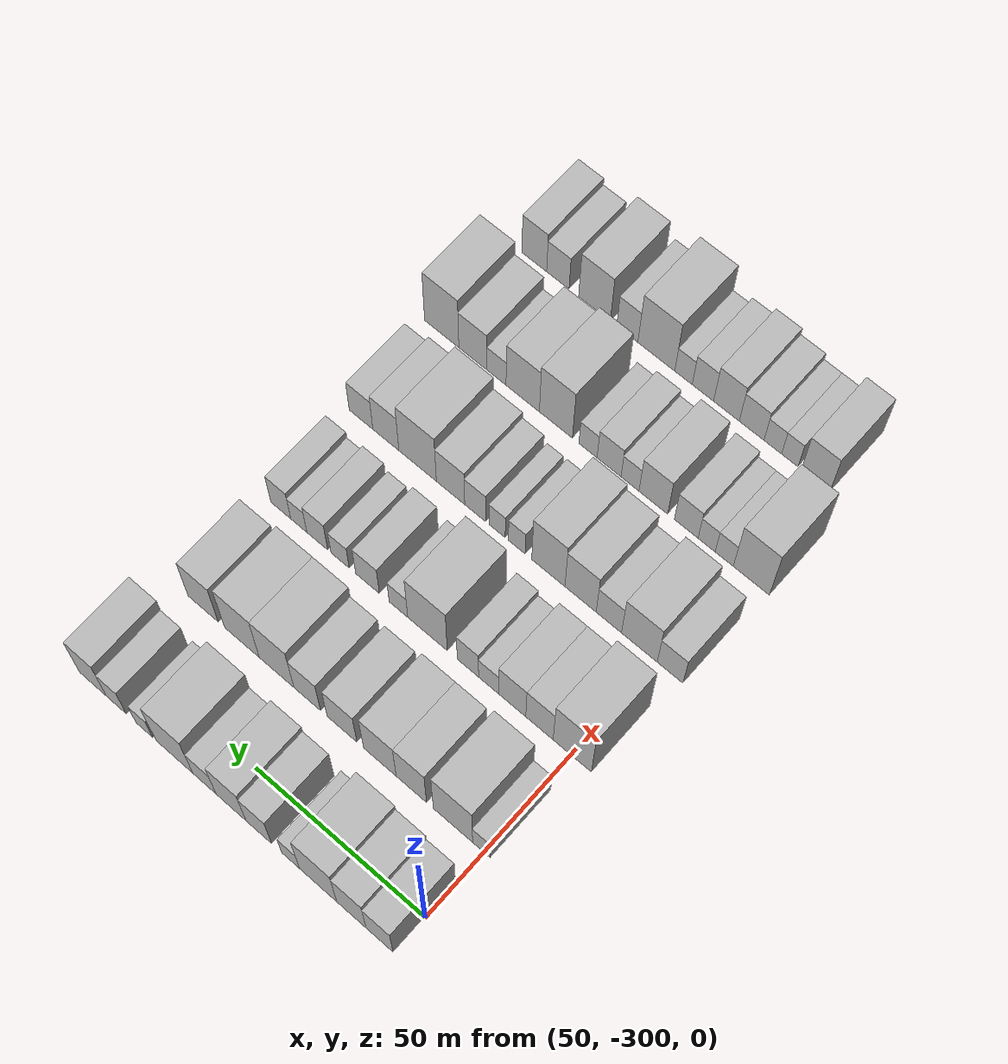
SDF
<sdf version="1.6">
 <world name="default">
  <model name="building_24">
   <static>1</static>
   <pose>50.0000 -295.7935 0 0.000000 0.000000 0.000000</pose>
   <link name="link">
    <pose>0 0 9.00 0 0 0</pose>
    <collision name="collision"><geometry><box><size>20.0000 7.7783 18.0000</size></box></geometry></collision>
    <visual name="visual">
     <cast_shadows>0</cast_shadows>
     <geometry><box><size>20.0000 7.7783 18.0000</size></box></geometry>
     <material>
      <script>
       <uri>model://HANNAS_wall/materials/scripts</uri>
       <uri>model://HANNAS_wall/materials/textures</uri>
       <name>vrc/HANNAS_wall</name>
      </script>
     </material>
    </visual>
   </link>
  </model>
  <model name="building_25">
   <static>1</static>
   <pose>50.0000 -287.6442 0 0.000000 0.000000 0.000000</pose>
   <link name="link">
    <pose>0 0 10.50 0 0 0</pose>
    <collision name="collision"><geometry><box><size>20.0000 8.5202 21.0000</size></box></geometry></collision>
    <visual name="visual">
     <cast_shadows>0</cast_shadows>
     <geometry><box><size>20.0000 8.5202 21.0000</size></box></geometry>
     <material>
      <script>
       <uri>model://HANNAS_wall/materials/scripts</uri>
       <uri>model://HANNAS_wall/materials/textures</uri>
       <name>vrc/HANNAS_wall</name>
      </script>
     </material>
    </visual>
   </link>
  </model>
  <model name="building_26">
   <static>1</static>
   <pose>50.0000 -277.9090 0 0.000000 0.000000 0.000000</pose>
   <link name="link">
    <pose>0 0 12.00 0 0 0</pose>
    <collision name="collision"><geometry><box><size>20.0000 10.9503 24.0000</size></box></geometry></collision>
    <visual name="visual">
     <cast_shadows>0</cast_shadows>
     <geometry><box><size>20.0000 10.9503 24.0000</size></box></geometry>
     <material>
      <script>
       <uri>model://HANNAS_wall/materials/scripts</uri>
       <uri>model://HANNAS_wall/materials/textures</uri>
       <name>vrc/HANNAS_wall</name>
      </script>
     </material>
    </visual>
   </link>
  </model>
  <model name="building_27">
   <static>1</static>
   <pose>50.0000 -269.7770 0 0.000000 0.000000 0.000000</pose>
   <link name="link">
    <pose>0 0 6.00 0 0 0</pose>
    <collision name="collision"><geometry><box><size>20.0000 5.3138 12.0000</size></box></geometry></collision>
    <visual name="visual">
     <cast_shadows>0</cast_shadows>
     <geometry><box><size>20.0000 5.3138 12.0000</size></box></geometry>
     <material>
      <script>
       <uri>model://HANNAS_wall/materials/scripts</uri>
       <uri>model://HANNAS_wall/materials/textures</uri>
       <name>vrc/HANNAS_wall</name>
      </script>
     </material>
    </visual>
   </link>
  </model>
  <model name="building_28">
   <static>1</static>
   <pose>50.0000 -260.3214 0 0.000000 0.000000 0.000000</pose>
   <link name="link">
    <pose>0 0 9.00 0 0 0</pose>
    <collision name="collision"><geometry><box><size>20.0000 7.5975 18.0000</size></box></geometry></collision>
    <visual name="visual">
     <cast_shadows>0</cast_shadows>
     <geometry><box><size>20.0000 7.5975 18.0000</size></box></geometry>
     <material>
      <script>
       <uri>model://HANNAS_wall/materials/scripts</uri>
       <uri>model://HANNAS_wall/materials/textures</uri>
       <name>vrc/HANNAS_wall</name>
      </script>
     </material>
    </visual>
   </link>
  </model>
  <model name="building_29">
   <static>1</static>
   <pose>50.0000 -251.9993 0 0.000000 0.000000 0.000000</pose>
   <link name="link">
    <pose>0 0 10.50 0 0 0</pose>
    <collision name="collision"><geometry><box><size>20.0000 9.0466 21.0000</size></box></geometry></collision>
    <visual name="visual">
     <cast_shadows>0</cast_shadows>
     <geometry><box><size>20.0000 9.0466 21.0000</size></box></geometry>
     <material>
      <script>
       <uri>model://HANNAS_wall/materials/scripts</uri>
       <uri>model://HANNAS_wall/materials/textures</uri>
       <name>vrc/HANNAS_wall</name>
      </script>
     </material>
    </visual>
   </link>
  </model>
  <model name="building_30">
   <static>1</static>
   <pose>50.0000 -243.9569 0 0.000000 0.000000 0.000000</pose>
   <link name="link">
    <pose>0 0 7.50 0 0 0</pose>
    <collision name="collision"><geometry><box><size>20.0000 7.0382 15.0000</size></box></geometry></collision>
    <visual name="visual">
     <cast_shadows>0</cast_shadows>
     <geometry><box><size>20.0000 7.0382 15.0000</size></box></geometry>
     <material>
      <script>
       <uri>model://HANNAS_wall/materials/scripts</uri>
       <uri>model://HANNAS_wall/materials/textures</uri>
       <name>vrc/HANNAS_wall</name>
      </script>
     </material>
    </visual>
   </link>
  </model>
  <model name="building_31">
   <static>1</static>
   <pose>50.0000 -234.7610 0 0.000000 0.000000 0.000000</pose>
   <link name="link">
    <pose>0 0 12.00 0 0 0</pose>
    <collision name="collision"><geometry><box><size>20.0000 11.3537 24.0000</size></box></geometry></collision>
    <visual name="visual">
     <cast_shadows>0</cast_shadows>
     <geometry><box><size>20.0000 11.3537 24.0000</size></box></geometry>
     <material>
      <script>
       <uri>model://HANNAS_wall/materials/scripts</uri>
       <uri>model://HANNAS_wall/materials/textures</uri>
       <name>vrc/HANNAS_wall</name>
      </script>
     </material>
    </visual>
   </link>
  </model>
  <model name="building_32">
   <static>1</static>
   <pose>50.0000 -225.4510 0 0.000000 0.000000 0.000000</pose>
   <link name="link">
    <pose>0 0 6.00 0 0 0</pose>
    <collision name="collision"><geometry><box><size>20.0000 5.2663 12.0000</size></box></geometry></collision>
    <visual name="visual">
     <cast_shadows>0</cast_shadows>
     <geometry><box><size>20.0000 5.2663 12.0000</size></box></geometry>
     <material>
      <script>
       <uri>model://HANNAS_wall/materials/scripts</uri>
       <uri>model://HANNAS_wall/materials/textures</uri>
       <name>vrc/HANNAS_wall</name>
      </script>
     </material>
    </visual>
   </link>
  </model>
  <model name="building_33">
   <static>1</static>
   <pose>50.0000 -216.7390 0 0.000000 0.000000 0.000000</pose>
   <link name="link">
    <pose>0 0 7.50 0 0 0</pose>
    <collision name="collision"><geometry><box><size>20.0000 6.1576 15.0000</size></box></geometry></collision>
    <visual name="visual">
     <cast_shadows>0</cast_shadows>
     <geometry><box><size>20.0000 6.1576 15.0000</size></box></geometry>
     <material>
      <script>
       <uri>model://HANNAS_wall/materials/scripts</uri>
       <uri>model://HANNAS_wall/materials/textures</uri>
       <name>vrc/HANNAS_wall</name>
      </script>
     </material>
    </visual>
   </link>
  </model>
  <model name="building_34">
   <static>1</static>
   <pose>50.0000 -209.4350 0 0.000000 0.000000 0.000000</pose>
   <link name="link">
    <pose>0 0 10.50 0 0 0</pose>
    <collision name="collision"><geometry><box><size>20.0000 8.4504 21.0000</size></box></geometry></collision>
    <visual name="visual">
     <cast_shadows>0</cast_shadows>
     <geometry><box><size>20.0000 8.4504 21.0000</size></box></geometry>
     <material>
      <script>
       <uri>model://HANNAS_wall/materials/scripts</uri>
       <uri>model://HANNAS_wall/materials/textures</uri>
       <name>vrc/HANNAS_wall</name>
      </script>
     </material>
    </visual>
   </link>
  </model>
  <model name="building_144">
   <static>1</static>
   <pose>79.0000 -299.1763 0 0.000000 0.000000 0.000000</pose>
   <link name="link">
    <pose>0 0 6.00 0 0 0</pose>
    <collision name="collision"><geometry><box><size>20.0000 5.1078 12.0000</size></box></geometry></collision>
    <visual name="visual">
     <cast_shadows>0</cast_shadows>
     <geometry><box><size>20.0000 5.1078 12.0000</size></box></geometry>
     <material>
      <script>
       <uri>model://HANNAS_wall/materials/scripts</uri>
       <uri>model://HANNAS_wall/materials/textures</uri>
       <name>vrc/HANNAS_wall</name>
      </script>
     </material>
    </visual>
   </link>
  </model>
  <model name="building_145">
   <static>1</static>
   <pose>79.0000 -290.9126 0 0.000000 0.000000 0.000000</pose>
   <link name="link">
    <pose>0 0 12.00 0 0 0</pose>
    <collision name="collision"><geometry><box><size>20.0000 11.4195 24.0000</size></box></geometry></collision>
    <visual name="visual">
     <cast_shadows>0</cast_shadows>
     <geometry><box><size>20.0000 11.4195 24.0000</size></box></geometry>
     <material>
      <script>
       <uri>model://HANNAS_wall/materials/scripts</uri>
       <uri>model://HANNAS_wall/materials/textures</uri>
       <name>vrc/HANNAS_wall</name>
      </script>
     </material>
    </visual>
   </link>
  </model>
  <model name="building_146">
   <static>1</static>
   <pose>79.0000 -278.7299 0 0.000000 0.000000 0.000000</pose>
   <link name="link">
    <pose>0 0 10.50 0 0 0</pose>
    <collision name="collision"><geometry><box><size>20.0000 8.9459 21.0000</size></box></geometry></collision>
    <visual name="visual">
     <cast_shadows>0</cast_shadows>
     <geometry><box><size>20.0000 8.9459 21.0000</size></box></geometry>
     <material>
      <script>
       <uri>model://HANNAS_wall/materials/scripts</uri>
       <uri>model://HANNAS_wall/materials/textures</uri>
       <name>vrc/HANNAS_wall</name>
      </script>
     </material>
    </visual>
   </link>
  </model>
  <model name="building_147">
   <static>1</static>
   <pose>79.0000 -269.4098 0 0.000000 0.000000 0.000000</pose>
   <link name="link">
    <pose>0 0 10.50 0 0 0</pose>
    <collision name="collision"><geometry><box><size>20.0000 9.6942 21.0000</size></box></geometry></collision>
    <visual name="visual">
     <cast_shadows>0</cast_shadows>
     <geometry><box><size>20.0000 9.6942 21.0000</size></box></geometry>
     <material>
      <script>
       <uri>model://HANNAS_wall/materials/scripts</uri>
       <uri>model://HANNAS_wall/materials/textures</uri>
       <name>vrc/HANNAS_wall</name>
      </script>
     </material>
    </visual>
   </link>
  </model>
  <model name="building_148">
   <static>1</static>
   <pose>79.0000 -258.0982 0 0.000000 0.000000 0.000000</pose>
   <link name="link">
    <pose>0 0 9.00 0 0 0</pose>
    <collision name="collision"><geometry><box><size>20.0000 8.9291 18.0000</size></box></geometry></collision>
    <visual name="visual">
     <cast_shadows>0</cast_shadows>
     <geometry><box><size>20.0000 8.9291 18.0000</size></box></geometry>
     <material>
      <script>
       <uri>model://HANNAS_wall/materials/scripts</uri>
       <uri>model://HANNAS_wall/materials/textures</uri>
       <name>vrc/HANNAS_wall</name>
      </script>
     </material>
    </visual>
   </link>
  </model>
  <model name="building_149">
   <static>1</static>
   <pose>79.0000 -247.5800 0 0.000000 0.000000 0.000000</pose>
   <link name="link">
    <pose>0 0 9.00 0 0 0</pose>
    <collision name="collision"><geometry><box><size>20.0000 8.1072 18.0000</size></box></geometry></collision>
    <visual name="visual">
     <cast_shadows>0</cast_shadows>
     <geometry><box><size>20.0000 8.1072 18.0000</size></box></geometry>
     <material>
      <script>
       <uri>model://HANNAS_wall/materials/scripts</uri>
       <uri>model://HANNAS_wall/materials/textures</uri>
       <name>vrc/HANNAS_wall</name>
      </script>
     </material>
    </visual>
   </link>
  </model>
  <model name="building_150">
   <static>1</static>
   <pose>79.0000 -238.2174 0 0.000000 0.000000 0.000000</pose>
   <link name="link">
    <pose>0 0 12.00 0 0 0</pose>
    <collision name="collision"><geometry><box><size>20.0000 10.6180 24.0000</size></box></geometry></collision>
    <visual name="visual">
     <cast_shadows>0</cast_shadows>
     <geometry><box><size>20.0000 10.6180 24.0000</size></box></geometry>
     <material>
      <script>
       <uri>model://HANNAS_wall/materials/scripts</uri>
       <uri>model://HANNAS_wall/materials/textures</uri>
       <name>vrc/HANNAS_wall</name>
      </script>
     </material>
    </visual>
   </link>
  </model>
  <model name="building_151">
   <static>1</static>
   <pose>79.0000 -227.5384 0 0.000000 0.000000 0.000000</pose>
   <link name="link">
    <pose>0 0 12.00 0 0 0</pose>
    <collision name="collision"><geometry><box><size>20.0000 10.7400 24.0000</size></box></geometry></collision>
    <visual name="visual">
     <cast_shadows>0</cast_shadows>
     <geometry><box><size>20.0000 10.7400 24.0000</size></box></geometry>
     <material>
      <script>
       <uri>model://HANNAS_wall/materials/scripts</uri>
       <uri>model://HANNAS_wall/materials/textures</uri>
       <name>vrc/HANNAS_wall</name>
      </script>
     </material>
    </visual>
   </link>
  </model>
  <model name="building_152">
   <static>1</static>
   <pose>79.0000 -215.4387 0 0.000000 0.000000 0.000000</pose>
   <link name="link">
    <pose>0 0 10.50 0 0 0</pose>
    <collision name="collision"><geometry><box><size>20.0000 9.4594 21.0000</size></box></geometry></collision>
    <visual name="visual">
     <cast_shadows>0</cast_shadows>
     <geometry><box><size>20.0000 9.4594 21.0000</size></box></geometry>
     <material>
      <script>
       <uri>model://HANNAS_wall/materials/scripts</uri>
       <uri>model://HANNAS_wall/materials/textures</uri>
       <name>vrc/HANNAS_wall</name>
      </script>
     </material>
    </visual>
   </link>
  </model>
  <model name="building_257">
   <static>1</static>
   <pose>108.0000 -300.2054 0 0.000000 0.000000 0.000000</pose>
   <link name="link">
    <pose>0 0 12.00 0 0 0</pose>
    <collision name="collision"><geometry><box><size>20.0000 11.0949 24.0000</size></box></geometry></collision>
    <visual name="visual">
     <cast_shadows>0</cast_shadows>
     <geometry><box><size>20.0000 11.0949 24.0000</size></box></geometry>
     <material>
      <script>
       <uri>model://HANNAS_wall/materials/scripts</uri>
       <uri>model://HANNAS_wall/materials/textures</uri>
       <name>vrc/HANNAS_wall</name>
      </script>
     </material>
    </visual>
   </link>
  </model>
  <model name="building_258">
   <static>1</static>
   <pose>108.0000 -290.6607 0 0.000000 0.000000 0.000000</pose>
   <link name="link">
    <pose>0 0 9.00 0 0 0</pose>
    <collision name="collision"><geometry><box><size>20.0000 7.9945 18.0000</size></box></geometry></collision>
    <visual name="visual">
     <cast_shadows>0</cast_shadows>
     <geometry><box><size>20.0000 7.9945 18.0000</size></box></geometry>
     <material>
      <script>
       <uri>model://HANNAS_wall/materials/scripts</uri>
       <uri>model://HANNAS_wall/materials/textures</uri>
       <name>vrc/HANNAS_wall</name>
      </script>
     </material>
    </visual>
   </link>
  </model>
  <model name="building_259">
   <static>1</static>
   <pose>108.0000 -282.6264 0 0.000000 0.000000 0.000000</pose>
   <link name="link">
    <pose>0 0 9.00 0 0 0</pose>
    <collision name="collision"><geometry><box><size>20.0000 8.0741 18.0000</size></box></geometry></collision>
    <visual name="visual">
     <cast_shadows>0</cast_shadows>
     <geometry><box><size>20.0000 8.0741 18.0000</size></box></geometry>
     <material>
      <script>
       <uri>model://HANNAS_wall/materials/scripts</uri>
       <uri>model://HANNAS_wall/materials/textures</uri>
       <name>vrc/HANNAS_wall</name>
      </script>
     </material>
    </visual>
   </link>
  </model>
  <model name="building_260">
   <static>1</static>
   <pose>108.0000 -275.6548 0 0.000000 0.000000 0.000000</pose>
   <link name="link">
    <pose>0 0 6.00 0 0 0</pose>
    <collision name="collision"><geometry><box><size>20.0000 5.8690 12.0000</size></box></geometry></collision>
    <visual name="visual">
     <cast_shadows>0</cast_shadows>
     <geometry><box><size>20.0000 5.8690 12.0000</size></box></geometry>
     <material>
      <script>
       <uri>model://HANNAS_wall/materials/scripts</uri>
       <uri>model://HANNAS_wall/materials/textures</uri>
       <name>vrc/HANNAS_wall</name>
      </script>
     </material>
    </visual>
   </link>
  </model>
  <model name="building_261">
   <static>1</static>
   <pose>108.0000 -269.5422 0 0.000000 0.000000 0.000000</pose>
   <link name="link">
    <pose>0 0 7.50 0 0 0</pose>
    <collision name="collision"><geometry><box><size>20.0000 6.3562 15.0000</size></box></geometry></collision>
    <visual name="visual">
     <cast_shadows>0</cast_shadows>
     <geometry><box><size>20.0000 6.3562 15.0000</size></box></geometry>
     <material>
      <script>
       <uri>model://HANNAS_wall/materials/scripts</uri>
       <uri>model://HANNAS_wall/materials/textures</uri>
       <name>vrc/HANNAS_wall</name>
      </script>
     </material>
    </visual>
   </link>
  </model>
  <model name="building_262">
   <static>1</static>
   <pose>108.0000 -257.4050 0 0.000000 0.000000 0.000000</pose>
   <link name="link">
    <pose>0 0 12.00 0 0 0</pose>
    <collision name="collision"><geometry><box><size>20.0000 11.9183 24.0000</size></box></geometry></collision>
    <visual name="visual">
     <cast_shadows>0</cast_shadows>
     <geometry><box><size>20.0000 11.9183 24.0000</size></box></geometry>
     <material>
      <script>
       <uri>model://HANNAS_wall/materials/scripts</uri>
       <uri>model://HANNAS_wall/materials/textures</uri>
       <name>vrc/HANNAS_wall</name>
      </script>
     </material>
    </visual>
   </link>
  </model>
  <model name="building_263">
   <static>1</static>
   <pose>108.0000 -248.6126 0 0.000000 0.000000 0.000000</pose>
   <link name="link">
    <pose>0 0 6.00 0 0 0</pose>
    <collision name="collision"><geometry><box><size>20.0000 5.6665 12.0000</size></box></geometry></collision>
    <visual name="visual">
     <cast_shadows>0</cast_shadows>
     <geometry><box><size>20.0000 5.6665 12.0000</size></box></geometry>
     <material>
      <script>
       <uri>model://HANNAS_wall/materials/scripts</uri>
       <uri>model://HANNAS_wall/materials/textures</uri>
       <name>vrc/HANNAS_wall</name>
      </script>
     </material>
    </visual>
   </link>
  </model>
  <model name="building_264">
   <static>1</static>
   <pose>108.0000 -239.1453 0 0.000000 0.000000 0.000000</pose>
   <link name="link">
    <pose>0 0 7.50 0 0 0</pose>
    <collision name="collision"><geometry><box><size>20.0000 7.2682 15.0000</size></box></geometry></collision>
    <visual name="visual">
     <cast_shadows>0</cast_shadows>
     <geometry><box><size>20.0000 7.2682 15.0000</size></box></geometry>
     <material>
      <script>
       <uri>model://HANNAS_wall/materials/scripts</uri>
       <uri>model://HANNAS_wall/materials/textures</uri>
       <name>vrc/HANNAS_wall</name>
      </script>
     </material>
    </visual>
   </link>
  </model>
  <model name="building_265">
   <static>1</static>
   <pose>108.0000 -230.6921 0 0.000000 0.000000 0.000000</pose>
   <link name="link">
    <pose>0 0 6.00 0 0 0</pose>
    <collision name="collision"><geometry><box><size>20.0000 5.6381 12.0000</size></box></geometry></collision>
    <visual name="visual">
     <cast_shadows>0</cast_shadows>
     <geometry><box><size>20.0000 5.6381 12.0000</size></box></geometry>
     <material>
      <script>
       <uri>model://HANNAS_wall/materials/scripts</uri>
       <uri>model://HANNAS_wall/materials/textures</uri>
       <name>vrc/HANNAS_wall</name>
      </script>
     </material>
    </visual>
   </link>
  </model>
  <model name="building_266">
   <static>1</static>
   <pose>108.0000 -223.6179 0 0.000000 0.000000 0.000000</pose>
   <link name="link">
    <pose>0 0 7.50 0 0 0</pose>
    <collision name="collision"><geometry><box><size>20.0000 6.5104 15.0000</size></box></geometry></collision>
    <visual name="visual">
     <cast_shadows>0</cast_shadows>
     <geometry><box><size>20.0000 6.5104 15.0000</size></box></geometry>
     <material>
      <script>
       <uri>model://HANNAS_wall/materials/scripts</uri>
       <uri>model://HANNAS_wall/materials/textures</uri>
       <name>vrc/HANNAS_wall</name>
      </script>
     </material>
    </visual>
   </link>
  </model>
  <model name="building_267">
   <static>1</static>
   <pose>108.0000 -217.8366 0 0.000000 0.000000 0.000000</pose>
   <link name="link">
    <pose>0 0 6.00 0 0 0</pose>
    <collision name="collision"><geometry><box><size>20.0000 5.0522 12.0000</size></box></geometry></collision>
    <visual name="visual">
     <cast_shadows>0</cast_shadows>
     <geometry><box><size>20.0000 5.0522 12.0000</size></box></geometry>
     <material>
      <script>
       <uri>model://HANNAS_wall/materials/scripts</uri>
       <uri>model://HANNAS_wall/materials/textures</uri>
       <name>vrc/HANNAS_wall</name>
      </script>
     </material>
    </visual>
   </link>
  </model>
  <model name="building_268">
   <static>1</static>
   <pose>108.0000 -212.1543 0 0.000000 0.000000 0.000000</pose>
   <link name="link">
    <pose>0 0 7.50 0 0 0</pose>
    <collision name="collision"><geometry><box><size>20.0000 6.3123 15.0000</size></box></geometry></collision>
    <visual name="visual">
     <cast_shadows>0</cast_shadows>
     <geometry><box><size>20.0000 6.3123 15.0000</size></box></geometry>
     <material>
      <script>
       <uri>model://HANNAS_wall/materials/scripts</uri>
       <uri>model://HANNAS_wall/materials/textures</uri>
       <name>vrc/HANNAS_wall</name>
      </script>
     </material>
    </visual>
   </link>
  </model>
  <model name="building_373">
   <static>1</static>
   <pose>137.0000 -304.1164 0 0.000000 0.000000 0.000000</pose>
   <link name="link">
    <pose>0 0 7.50 0 0 0</pose>
    <collision name="collision"><geometry><box><size>20.0000 7.4703 15.0000</size></box></geometry></collision>
    <visual name="visual">
     <cast_shadows>0</cast_shadows>
     <geometry><box><size>20.0000 7.4703 15.0000</size></box></geometry>
     <material>
      <script>
       <uri>model://HANNAS_wall/materials/scripts</uri>
       <uri>model://HANNAS_wall/materials/textures</uri>
       <name>vrc/HANNAS_wall</name>
      </script>
     </material>
    </visual>
   </link>
  </model>
  <model name="building_374">
   <static>1</static>
   <pose>137.0000 -295.1688 0 0.000000 0.000000 0.000000</pose>
   <link name="link">
    <pose>0 0 10.50 0 0 0</pose>
    <collision name="collision"><geometry><box><size>20.0000 10.4248 21.0000</size></box></geometry></collision>
    <visual name="visual">
     <cast_shadows>0</cast_shadows>
     <geometry><box><size>20.0000 10.4248 21.0000</size></box></geometry>
     <material>
      <script>
       <uri>model://HANNAS_wall/materials/scripts</uri>
       <uri>model://HANNAS_wall/materials/textures</uri>
       <name>vrc/HANNAS_wall</name>
      </script>
     </material>
    </visual>
   </link>
  </model>
  <model name="building_375">
   <static>1</static>
   <pose>137.0000 -286.2196 0 0.000000 0.000000 0.000000</pose>
   <link name="link">
    <pose>0 0 7.50 0 0 0</pose>
    <collision name="collision"><geometry><box><size>20.0000 7.4737 15.0000</size></box></geometry></collision>
    <visual name="visual">
     <cast_shadows>0</cast_shadows>
     <geometry><box><size>20.0000 7.4737 15.0000</size></box></geometry>
     <material>
      <script>
       <uri>model://HANNAS_wall/materials/scripts</uri>
       <uri>model://HANNAS_wall/materials/textures</uri>
       <name>vrc/HANNAS_wall</name>
      </script>
     </material>
    </visual>
   </link>
  </model>
  <model name="building_376">
   <static>1</static>
   <pose>137.0000 -277.8260 0 0.000000 0.000000 0.000000</pose>
   <link name="link">
    <pose>0 0 10.50 0 0 0</pose>
    <collision name="collision"><geometry><box><size>20.0000 9.3133 21.0000</size></box></geometry></collision>
    <visual name="visual">
     <cast_shadows>0</cast_shadows>
     <geometry><box><size>20.0000 9.3133 21.0000</size></box></geometry>
     <material>
      <script>
       <uri>model://HANNAS_wall/materials/scripts</uri>
       <uri>model://HANNAS_wall/materials/textures</uri>
       <name>vrc/HANNAS_wall</name>
      </script>
     </material>
    </visual>
   </link>
  </model>
  <model name="building_377">
   <static>1</static>
   <pose>137.0000 -268.2035 0 0.000000 0.000000 0.000000</pose>
   <link name="link">
    <pose>0 0 12.00 0 0 0</pose>
    <collision name="collision"><geometry><box><size>20.0000 9.9318 24.0000</size></box></geometry></collision>
    <visual name="visual">
     <cast_shadows>0</cast_shadows>
     <geometry><box><size>20.0000 9.9318 24.0000</size></box></geometry>
     <material>
      <script>
       <uri>model://HANNAS_wall/materials/scripts</uri>
       <uri>model://HANNAS_wall/materials/textures</uri>
       <name>vrc/HANNAS_wall</name>
      </script>
     </material>
    </visual>
   </link>
  </model>
  <model name="building_378">
   <static>1</static>
   <pose>137.0000 -258.7164 0 0.000000 0.000000 0.000000</pose>
   <link name="link">
    <pose>0 0 6.00 0 0 0</pose>
    <collision name="collision"><geometry><box><size>20.0000 5.0423 12.0000</size></box></geometry></collision>
    <visual name="visual">
     <cast_shadows>0</cast_shadows>
     <geometry><box><size>20.0000 5.0423 12.0000</size></box></geometry>
     <material>
      <script>
       <uri>model://HANNAS_wall/materials/scripts</uri>
       <uri>model://HANNAS_wall/materials/textures</uri>
       <name>vrc/HANNAS_wall</name>
      </script>
     </material>
    </visual>
   </link>
  </model>
  <model name="building_379">
   <static>1</static>
   <pose>137.0000 -252.7411 0 0.000000 0.000000 0.000000</pose>
   <link name="link">
    <pose>0 0 6.00 0 0 0</pose>
    <collision name="collision"><geometry><box><size>20.0000 4.9083 12.0000</size></box></geometry></collision>
    <visual name="visual">
     <cast_shadows>0</cast_shadows>
     <geometry><box><size>20.0000 4.9083 12.0000</size></box></geometry>
     <material>
      <script>
       <uri>model://HANNAS_wall/materials/scripts</uri>
       <uri>model://HANNAS_wall/materials/textures</uri>
       <name>vrc/HANNAS_wall</name>
      </script>
     </material>
    </visual>
   </link>
  </model>
  <model name="building_380">
   <static>1</static>
   <pose>137.0000 -246.0699 0 0.000000 0.000000 0.000000</pose>
   <link name="link">
    <pose>0 0 7.50 0 0 0</pose>
    <collision name="collision"><geometry><box><size>20.0000 6.4342 15.0000</size></box></geometry></collision>
    <visual name="visual">
     <cast_shadows>0</cast_shadows>
     <geometry><box><size>20.0000 6.4342 15.0000</size></box></geometry>
     <material>
      <script>
       <uri>model://HANNAS_wall/materials/scripts</uri>
       <uri>model://HANNAS_wall/materials/textures</uri>
       <name>vrc/HANNAS_wall</name>
      </script>
     </material>
    </visual>
   </link>
  </model>
  <model name="building_381">
   <static>1</static>
   <pose>137.0000 -238.4769 0 0.000000 0.000000 0.000000</pose>
   <link name="link">
    <pose>0 0 9.00 0 0 0</pose>
    <collision name="collision"><geometry><box><size>20.0000 8.7518 18.0000</size></box></geometry></collision>
    <visual name="visual">
     <cast_shadows>0</cast_shadows>
     <geometry><box><size>20.0000 8.7518 18.0000</size></box></geometry>
     <material>
      <script>
       <uri>model://HANNAS_wall/materials/scripts</uri>
       <uri>model://HANNAS_wall/materials/textures</uri>
       <name>vrc/HANNAS_wall</name>
      </script>
     </material>
    </visual>
   </link>
  </model>
  <model name="building_382">
   <static>1</static>
   <pose>137.0000 -228.2690 0 0.000000 0.000000 0.000000</pose>
   <link name="link">
    <pose>0 0 12.00 0 0 0</pose>
    <collision name="collision"><geometry><box><size>20.0000 11.6640 24.0000</size></box></geometry></collision>
    <visual name="visual">
     <cast_shadows>0</cast_shadows>
     <geometry><box><size>20.0000 11.6640 24.0000</size></box></geometry>
     <material>
      <script>
       <uri>model://HANNAS_wall/materials/scripts</uri>
       <uri>model://HANNAS_wall/materials/textures</uri>
       <name>vrc/HANNAS_wall</name>
      </script>
     </material>
    </visual>
   </link>
  </model>
  <model name="building_383">
   <static>1</static>
   <pose>137.0000 -218.3376 0 0.000000 0.000000 0.000000</pose>
   <link name="link">
    <pose>0 0 9.00 0 0 0</pose>
    <collision name="collision"><geometry><box><size>20.0000 8.1989 18.0000</size></box></geometry></collision>
    <visual name="visual">
     <cast_shadows>0</cast_shadows>
     <geometry><box><size>20.0000 8.1989 18.0000</size></box></geometry>
     <material>
      <script>
       <uri>model://HANNAS_wall/materials/scripts</uri>
       <uri>model://HANNAS_wall/materials/textures</uri>
       <name>vrc/HANNAS_wall</name>
      </script>
     </material>
    </visual>
   </link>
  </model>
  <model name="building_384">
   <static>1</static>
   <pose>137.0000 -210.5144 0 0.000000 0.000000 0.000000</pose>
   <link name="link">
    <pose>0 0 7.50 0 0 0</pose>
    <collision name="collision"><geometry><box><size>20.0000 7.4474 15.0000</size></box></geometry></collision>
    <visual name="visual">
     <cast_shadows>0</cast_shadows>
     <geometry><box><size>20.0000 7.4474 15.0000</size></box></geometry>
     <material>
      <script>
       <uri>model://HANNAS_wall/materials/scripts</uri>
       <uri>model://HANNAS_wall/materials/textures</uri>
       <name>vrc/HANNAS_wall</name>
      </script>
     </material>
    </visual>
   </link>
  </model>
  <model name="building_488">
   <static>1</static>
   <pose>166.0000 -303.9916 0 0.000000 0.000000 0.000000</pose>
   <link name="link">
    <pose>0 0 12.00 0 0 0</pose>
    <collision name="collision"><geometry><box><size>20.0000 10.5231 24.0000</size></box></geometry></collision>
    <visual name="visual">
     <cast_shadows>0</cast_shadows>
     <geometry><box><size>20.0000 10.5231 24.0000</size></box></geometry>
     <material>
      <script>
       <uri>model://HANNAS_wall/materials/scripts</uri>
       <uri>model://HANNAS_wall/materials/textures</uri>
       <name>vrc/HANNAS_wall</name>
      </script>
     </material>
    </visual>
   </link>
  </model>
  <model name="building_489">
   <static>1</static>
   <pose>166.0000 -296.0763 0 0.000000 0.000000 0.000000</pose>
   <link name="link">
    <pose>0 0 6.00 0 0 0</pose>
    <collision name="collision"><geometry><box><size>20.0000 5.3074 12.0000</size></box></geometry></collision>
    <visual name="visual">
     <cast_shadows>0</cast_shadows>
     <geometry><box><size>20.0000 5.3074 12.0000</size></box></geometry>
     <material>
      <script>
       <uri>model://HANNAS_wall/materials/scripts</uri>
       <uri>model://HANNAS_wall/materials/textures</uri>
       <name>vrc/HANNAS_wall</name>
      </script>
     </material>
    </visual>
   </link>
  </model>
  <model name="building_490">
   <static>1</static>
   <pose>166.0000 -290.9012 0 0.000000 0.000000 0.000000</pose>
   <link name="link">
    <pose>0 0 6.00 0 0 0</pose>
    <collision name="collision"><geometry><box><size>20.0000 5.0427 12.0000</size></box></geometry></collision>
    <visual name="visual">
     <cast_shadows>0</cast_shadows>
     <geometry><box><size>20.0000 5.0427 12.0000</size></box></geometry>
     <material>
      <script>
       <uri>model://HANNAS_wall/materials/scripts</uri>
       <uri>model://HANNAS_wall/materials/textures</uri>
       <name>vrc/HANNAS_wall</name>
      </script>
     </material>
    </visual>
   </link>
  </model>
  <model name="building_491">
   <static>1</static>
   <pose>166.0000 -284.8660 0 0.000000 0.000000 0.000000</pose>
   <link name="link">
    <pose>0 0 7.50 0 0 0</pose>
    <collision name="collision"><geometry><box><size>20.0000 7.0278 15.0000</size></box></geometry></collision>
    <visual name="visual">
     <cast_shadows>0</cast_shadows>
     <geometry><box><size>20.0000 7.0278 15.0000</size></box></geometry>
     <material>
      <script>
       <uri>model://HANNAS_wall/materials/scripts</uri>
       <uri>model://HANNAS_wall/materials/textures</uri>
       <name>vrc/HANNAS_wall</name>
      </script>
     </material>
    </visual>
   </link>
  </model>
  <model name="building_492">
   <static>1</static>
   <pose>166.0000 -275.0646 0 0.000000 0.000000 0.000000</pose>
   <link name="link">
    <pose>0 0 9.00 0 0 0</pose>
    <collision name="collision"><geometry><box><size>20.0000 8.5748 18.0000</size></box></geometry></collision>
    <visual name="visual">
     <cast_shadows>0</cast_shadows>
     <geometry><box><size>20.0000 8.5748 18.0000</size></box></geometry>
     <material>
      <script>
       <uri>model://HANNAS_wall/materials/scripts</uri>
       <uri>model://HANNAS_wall/materials/textures</uri>
       <name>vrc/HANNAS_wall</name>
      </script>
     </material>
    </visual>
   </link>
  </model>
  <model name="building_493">
   <static>1</static>
   <pose>166.0000 -268.0669 0 0.000000 0.000000 0.000000</pose>
   <link name="link">
    <pose>0 0 6.00 0 0 0</pose>
    <collision name="collision"><geometry><box><size>20.0000 5.4206 12.0000</size></box></geometry></collision>
    <visual name="visual">
     <cast_shadows>0</cast_shadows>
     <geometry><box><size>20.0000 5.4206 12.0000</size></box></geometry>
     <material>
      <script>
       <uri>model://HANNAS_wall/materials/scripts</uri>
       <uri>model://HANNAS_wall/materials/textures</uri>
       <name>vrc/HANNAS_wall</name>
      </script>
     </material>
    </visual>
   </link>
  </model>
  <model name="building_494">
   <static>1</static>
   <pose>166.0000 -261.7299 0 0.000000 0.000000 0.000000</pose>
   <link name="link">
    <pose>0 0 7.50 0 0 0</pose>
    <collision name="collision"><geometry><box><size>20.0000 7.2535 15.0000</size></box></geometry></collision>
    <visual name="visual">
     <cast_shadows>0</cast_shadows>
     <geometry><box><size>20.0000 7.2535 15.0000</size></box></geometry>
     <material>
      <script>
       <uri>model://HANNAS_wall/materials/scripts</uri>
       <uri>model://HANNAS_wall/materials/textures</uri>
       <name>vrc/HANNAS_wall</name>
      </script>
     </material>
    </visual>
   </link>
  </model>
  <model name="building_495">
   <static>1</static>
   <pose>166.0000 -255.3406 0 0.000000 0.000000 0.000000</pose>
   <link name="link">
    <pose>0 0 6.00 0 0 0</pose>
    <collision name="collision"><geometry><box><size>20.0000 5.5253 12.0000</size></box></geometry></collision>
    <visual name="visual">
     <cast_shadows>0</cast_shadows>
     <geometry><box><size>20.0000 5.5253 12.0000</size></box></geometry>
     <material>
      <script>
       <uri>model://HANNAS_wall/materials/scripts</uri>
       <uri>model://HANNAS_wall/materials/textures</uri>
       <name>vrc/HANNAS_wall</name>
      </script>
     </material>
    </visual>
   </link>
  </model>
  <model name="building_496">
   <static>1</static>
   <pose>166.0000 -245.4978 0 0.000000 0.000000 0.000000</pose>
   <link name="link">
    <pose>0 0 12.00 0 0 0</pose>
    <collision name="collision"><geometry><box><size>20.0000 10.1602 24.0000</size></box></geometry></collision>
    <visual name="visual">
     <cast_shadows>0</cast_shadows>
     <geometry><box><size>20.0000 10.1602 24.0000</size></box></geometry>
     <material>
      <script>
       <uri>model://HANNAS_wall/materials/scripts</uri>
       <uri>model://HANNAS_wall/materials/textures</uri>
       <name>vrc/HANNAS_wall</name>
      </script>
     </material>
    </visual>
   </link>
  </model>
  <model name="building_497">
   <static>1</static>
   <pose>166.0000 -235.2396 0 0.000000 0.000000 0.000000</pose>
   <link name="link">
    <pose>0 0 10.50 0 0 0</pose>
    <collision name="collision"><geometry><box><size>20.0000 10.3564 21.0000</size></box></geometry></collision>
    <visual name="visual">
     <cast_shadows>0</cast_shadows>
     <geometry><box><size>20.0000 10.3564 21.0000</size></box></geometry>
     <material>
      <script>
       <uri>model://HANNAS_wall/materials/scripts</uri>
       <uri>model://HANNAS_wall/materials/textures</uri>
       <name>vrc/HANNAS_wall</name>
      </script>
     </material>
    </visual>
   </link>
  </model>
  <model name="building_498">
   <static>1</static>
   <pose>166.0000 -227.0694 0 0.000000 0.000000 0.000000</pose>
   <link name="link">
    <pose>0 0 6.00 0 0 0</pose>
    <collision name="collision"><geometry><box><size>20.0000 5.9839 12.0000</size></box></geometry></collision>
    <visual name="visual">
     <cast_shadows>0</cast_shadows>
     <geometry><box><size>20.0000 5.9839 12.0000</size></box></geometry>
     <material>
      <script>
       <uri>model://HANNAS_wall/materials/scripts</uri>
       <uri>model://HANNAS_wall/materials/textures</uri>
       <name>vrc/HANNAS_wall</name>
      </script>
     </material>
    </visual>
   </link>
  </model>
  <model name="building_499">
   <static>1</static>
   <pose>166.0000 -219.6615 0 0.000000 0.000000 0.000000</pose>
   <link name="link">
    <pose>0 0 9.00 0 0 0</pose>
    <collision name="collision"><geometry><box><size>20.0000 8.8319 18.0000</size></box></geometry></collision>
    <visual name="visual">
     <cast_shadows>0</cast_shadows>
     <geometry><box><size>20.0000 8.8319 18.0000</size></box></geometry>
     <material>
      <script>
       <uri>model://HANNAS_wall/materials/scripts</uri>
       <uri>model://HANNAS_wall/materials/textures</uri>
       <name>vrc/HANNAS_wall</name>
      </script>
     </material>
    </visual>
   </link>
  </model>
  <model name="building_500">
   <static>1</static>
   <pose>166.0000 -209.8114 0 0.000000 0.000000 0.000000</pose>
   <link name="link">
    <pose>0 0 12.00 0 0 0</pose>
    <collision name="collision"><geometry><box><size>20.0000 10.8684 24.0000</size></box></geometry></collision>
    <visual name="visual">
     <cast_shadows>0</cast_shadows>
     <geometry><box><size>20.0000 10.8684 24.0000</size></box></geometry>
     <material>
      <script>
       <uri>model://HANNAS_wall/materials/scripts</uri>
       <uri>model://HANNAS_wall/materials/textures</uri>
       <name>vrc/HANNAS_wall</name>
      </script>
     </material>
    </visual>
   </link>
  </model>
  <model name="building_601">
   <static>1</static>
   <pose>195.0000 -299.6684 0 0.000000 0.000000 0.000000</pose>
   <link name="link">
    <pose>0 0 9.00 0 0 0</pose>
    <collision name="collision"><geometry><box><size>20.0000 8.4110 18.0000</size></box></geometry></collision>
    <visual name="visual">
     <cast_shadows>0</cast_shadows>
     <geometry><box><size>20.0000 8.4110 18.0000</size></box></geometry>
     <material>
      <script>
       <uri>model://HANNAS_wall/materials/scripts</uri>
       <uri>model://HANNAS_wall/materials/textures</uri>
       <name>vrc/HANNAS_wall</name>
      </script>
     </material>
    </visual>
   </link>
  </model>
  <model name="building_602">
   <static>1</static>
   <pose>195.0000 -292.0334 0 0.000000 0.000000 0.000000</pose>
   <link name="link">
    <pose>0 0 6.00 0 0 0</pose>
    <collision name="collision"><geometry><box><size>20.0000 4.8591 12.0000</size></box></geometry></collision>
    <visual name="visual">
     <cast_shadows>0</cast_shadows>
     <geometry><box><size>20.0000 4.8591 12.0000</size></box></geometry>
     <material>
      <script>
       <uri>model://HANNAS_wall/materials/scripts</uri>
       <uri>model://HANNAS_wall/materials/textures</uri>
       <name>vrc/HANNAS_wall</name>
      </script>
     </material>
    </visual>
   </link>
  </model>
  <model name="building_603">
   <static>1</static>
   <pose>195.0000 -286.9927 0 0.000000 0.000000 0.000000</pose>
   <link name="link">
    <pose>0 0 6.00 0 0 0</pose>
    <collision name="collision"><geometry><box><size>20.0000 5.2223 12.0000</size></box></geometry></collision>
    <visual name="visual">
     <cast_shadows>0</cast_shadows>
     <geometry><box><size>20.0000 5.2223 12.0000</size></box></geometry>
     <material>
      <script>
       <uri>model://HANNAS_wall/materials/scripts</uri>
       <uri>model://HANNAS_wall/materials/textures</uri>
       <name>vrc/HANNAS_wall</name>
      </script>
     </material>
    </visual>
   </link>
  </model>
  <model name="building_604">
   <static>1</static>
   <pose>195.0000 -280.6833 0 0.000000 0.000000 0.000000</pose>
   <link name="link">
    <pose>0 0 7.50 0 0 0</pose>
    <collision name="collision"><geometry><box><size>20.0000 7.3965 15.0000</size></box></geometry></collision>
    <visual name="visual">
     <cast_shadows>0</cast_shadows>
     <geometry><box><size>20.0000 7.3965 15.0000</size></box></geometry>
     <material>
      <script>
       <uri>model://HANNAS_wall/materials/scripts</uri>
       <uri>model://HANNAS_wall/materials/textures</uri>
       <name>vrc/HANNAS_wall</name>
      </script>
     </material>
    </visual>
   </link>
  </model>
  <model name="building_605">
   <static>1</static>
   <pose>195.0000 -273.1147 0 0.000000 0.000000 0.000000</pose>
   <link name="link">
    <pose>0 0 9.00 0 0 0</pose>
    <collision name="collision"><geometry><box><size>20.0000 7.7407 18.0000</size></box></geometry></collision>
    <visual name="visual">
     <cast_shadows>0</cast_shadows>
     <geometry><box><size>20.0000 7.7407 18.0000</size></box></geometry>
     <material>
      <script>
       <uri>model://HANNAS_wall/materials/scripts</uri>
       <uri>model://HANNAS_wall/materials/textures</uri>
       <name>vrc/HANNAS_wall</name>
      </script>
     </material>
    </visual>
   </link>
  </model>
  <model name="building_606">
   <static>1</static>
   <pose>195.0000 -266.0065 0 0.000000 0.000000 0.000000</pose>
   <link name="link">
    <pose>0 0 7.50 0 0 0</pose>
    <collision name="collision"><geometry><box><size>20.0000 6.4758 15.0000</size></box></geometry></collision>
    <visual name="visual">
     <cast_shadows>0</cast_shadows>
     <geometry><box><size>20.0000 6.4758 15.0000</size></box></geometry>
     <material>
      <script>
       <uri>model://HANNAS_wall/materials/scripts</uri>
       <uri>model://HANNAS_wall/materials/textures</uri>
       <name>vrc/HANNAS_wall</name>
      </script>
     </material>
    </visual>
   </link>
  </model>
  <model name="building_607">
   <static>1</static>
   <pose>195.0000 -260.1056 0 0.000000 0.000000 0.000000</pose>
   <link name="link">
    <pose>0 0 6.00 0 0 0</pose>
    <collision name="collision"><geometry><box><size>20.0000 5.3259 12.0000</size></box></geometry></collision>
    <visual name="visual">
     <cast_shadows>0</cast_shadows>
     <geometry><box><size>20.0000 5.3259 12.0000</size></box></geometry>
     <material>
      <script>
       <uri>model://HANNAS_wall/materials/scripts</uri>
       <uri>model://HANNAS_wall/materials/textures</uri>
       <name>vrc/HANNAS_wall</name>
      </script>
     </material>
    </visual>
   </link>
  </model>
  <model name="building_608">
   <static>1</static>
   <pose>195.0000 -251.7817 0 0.000000 0.000000 0.000000</pose>
   <link name="link">
    <pose>0 0 12.00 0 0 0</pose>
    <collision name="collision"><geometry><box><size>20.0000 11.3220 24.0000</size></box></geometry></collision>
    <visual name="visual">
     <cast_shadows>0</cast_shadows>
     <geometry><box><size>20.0000 11.3220 24.0000</size></box></geometry>
     <material>
      <script>
       <uri>model://HANNAS_wall/materials/scripts</uri>
       <uri>model://HANNAS_wall/materials/textures</uri>
       <name>vrc/HANNAS_wall</name>
      </script>
     </material>
    </visual>
   </link>
  </model>
  <model name="building_609">
   <static>1</static>
   <pose>195.0000 -242.8547 0 0.000000 0.000000 0.000000</pose>
   <link name="link">
    <pose>0 0 7.50 0 0 0</pose>
    <collision name="collision"><geometry><box><size>20.0000 6.5319 15.0000</size></box></geometry></collision>
    <visual name="visual">
     <cast_shadows>0</cast_shadows>
     <geometry><box><size>20.0000 6.5319 15.0000</size></box></geometry>
     <material>
      <script>
       <uri>model://HANNAS_wall/materials/scripts</uri>
       <uri>model://HANNAS_wall/materials/textures</uri>
       <name>vrc/HANNAS_wall</name>
      </script>
     </material>
    </visual>
   </link>
  </model>
  <model name="building_610">
   <static>1</static>
   <pose>195.0000 -232.6369 0 0.000000 0.000000 0.000000</pose>
   <link name="link">
    <pose>0 0 10.50 0 0 0</pose>
    <collision name="collision"><geometry><box><size>20.0000 9.9037 21.0000</size></box></geometry></collision>
    <visual name="visual">
     <cast_shadows>0</cast_shadows>
     <geometry><box><size>20.0000 9.9037 21.0000</size></box></geometry>
     <material>
      <script>
       <uri>model://HANNAS_wall/materials/scripts</uri>
       <uri>model://HANNAS_wall/materials/textures</uri>
       <name>vrc/HANNAS_wall</name>
      </script>
     </material>
    </visual>
   </link>
  </model>
  <model name="building_611">
   <static>1</static>
   <pose>195.0000 -221.1471 0 0.000000 0.000000 0.000000</pose>
   <link name="link">
    <pose>0 0 7.50 0 0 0</pose>
    <collision name="collision"><geometry><box><size>20.0000 7.0758 15.0000</size></box></geometry></collision>
    <visual name="visual">
     <cast_shadows>0</cast_shadows>
     <geometry><box><size>20.0000 7.0758 15.0000</size></box></geometry>
     <material>
      <script>
       <uri>model://HANNAS_wall/materials/scripts</uri>
       <uri>model://HANNAS_wall/materials/textures</uri>
       <name>vrc/HANNAS_wall</name>
      </script>
     </material>
    </visual>
   </link>
  </model>
  <model name="building_612">
   <static>1</static>
   <pose>195.0000 -213.6741 0 0.000000 0.000000 0.000000</pose>
   <link name="link">
    <pose>0 0 9.00 0 0 0</pose>
    <collision name="collision"><geometry><box><size>20.0000 7.8702 18.0000</size></box></geometry></collision>
    <visual name="visual">
     <cast_shadows>0</cast_shadows>
     <geometry><box><size>20.0000 7.8702 18.0000</size></box></geometry>
     <material>
      <script>
       <uri>model://HANNAS_wall/materials/scripts</uri>
       <uri>model://HANNAS_wall/materials/textures</uri>
       <name>vrc/HANNAS_wall</name>
      </script>
     </material>
    </visual>
   </link>
  </model>
 </world>
</sdf>
